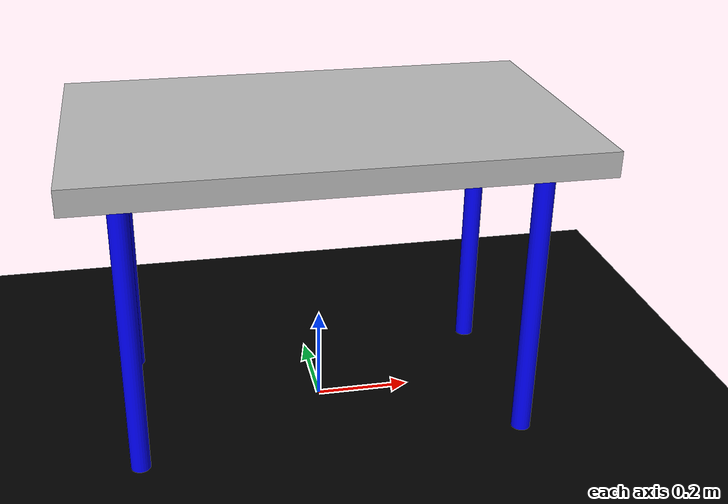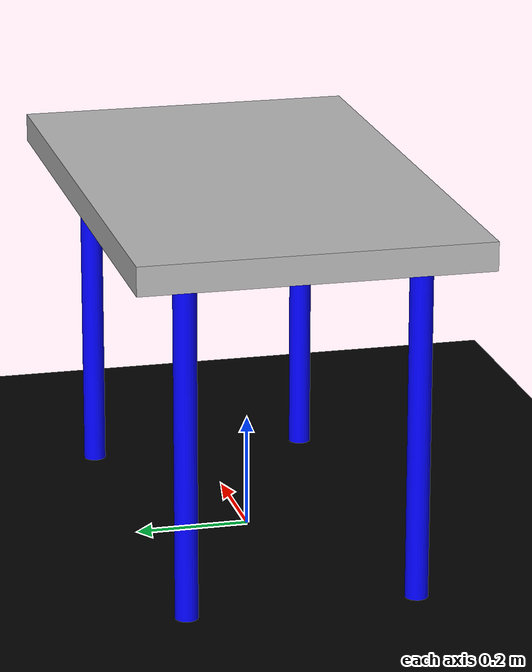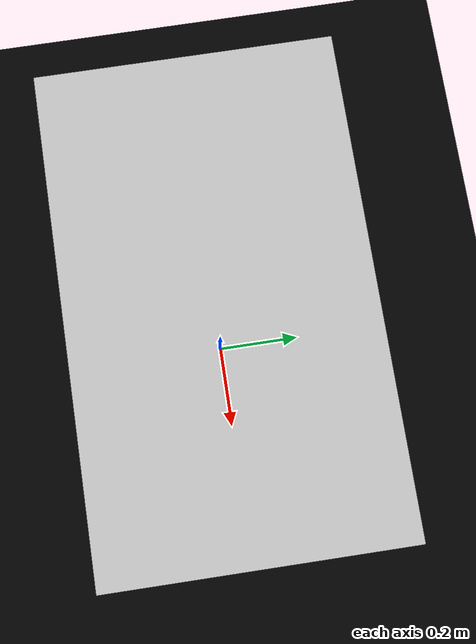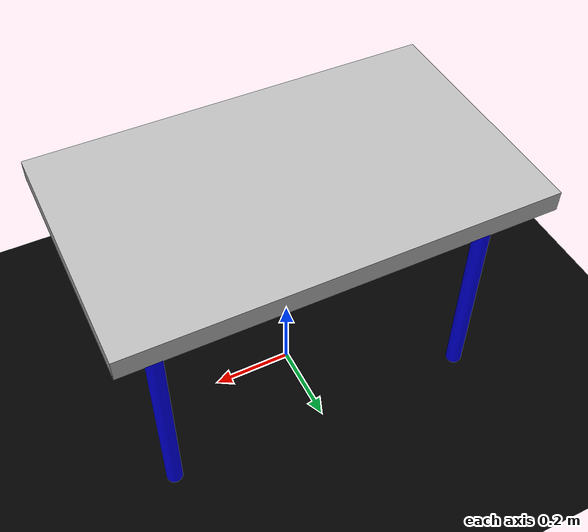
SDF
<sdf version="1.6">
 <world name="default">
  <model name="ground_plane">
   <static>true</static>
   <link name="link">
    <visual name="ground_visual">
     <geometry><plane><normal>0 0 1</normal><size>100 100</size></plane></geometry>
     <material><diffuse>0 0 0 0.4</diffuse></material>
    </visual>
    <collision name="ground_collision">
     <geometry><plane><normal>0 0 1</normal><size>100 100</size></plane></geometry>
    </collision>
   </link>
  </model>
  <model name="table">
   <static>true</static>
   <link name="leg_fl_link">
    <pose>-0.4 -0.2 0.3 0 0 0</pose>
    <visual name="fl_visual">
     <geometry><cylinder><radius>0.02</radius><length>0.6</length></cylinder></geometry>
     <material><diffuse>0 0 1 1</diffuse></material>
    </visual>
    <collision name="fl_collision">
     <geometry><cylinder><radius>0.02</radius><length>0.6</length></cylinder></geometry>
    </collision>
   </link>
   <link name="leg_rl_link">
    <pose>0.4 -0.2 0.3 0 0 0</pose>
    <visual name="rl_visual">
     <geometry><cylinder><radius>0.02</radius><length>0.6</length></cylinder></geometry>
     <material><diffuse>0 0 1 1</diffuse></material>
    </visual>
    <collision name="rl_collision">
     <geometry><cylinder><radius>0.02</radius><length>0.6</length></cylinder></geometry>
    </collision>
   </link>
   <link name="leg_fr_link">
    <pose>-0.4 0.2 0.3 0 0 0</pose>
    <visual name="fr_visual">
     <geometry><cylinder><radius>0.02</radius><length>0.6</length></cylinder></geometry>
     <material><diffuse>0 0 1 1</diffuse></material>
    </visual>
    <collision name="fr_collision">
     <geometry><cylinder><radius>0.02</radius><length>0.6</length></cylinder></geometry>
    </collision>
   </link>
   <link name="leg_rr_link">
    <pose>0.4 0.2 0.3 0 0 0</pose>
    <visual name="rr_visual">
     <geometry><cylinder><radius>0.02</radius><length>0.6</length></cylinder></geometry>
     <material><diffuse>0 0 1 1</diffuse></material>
    </visual>
    <collision name="rr_collision">
     <geometry><cylinder><radius>0.02</radius><length>0.6</length></cylinder></geometry>
    </collision>
   </link>
   <link name="table_top_link">
    <pose>0 0 0.625 0 0 0</pose>
    <visual name="table_top_visual"><geometry><box><size>1 0.6 0.05</size></box></geometry></visual>
    <collision name="table_top_collision"><geometry><box><size>1 0.6 0.05</size></box></geometry></collision>
   </link>
  </model>
 </world>
</sdf>
